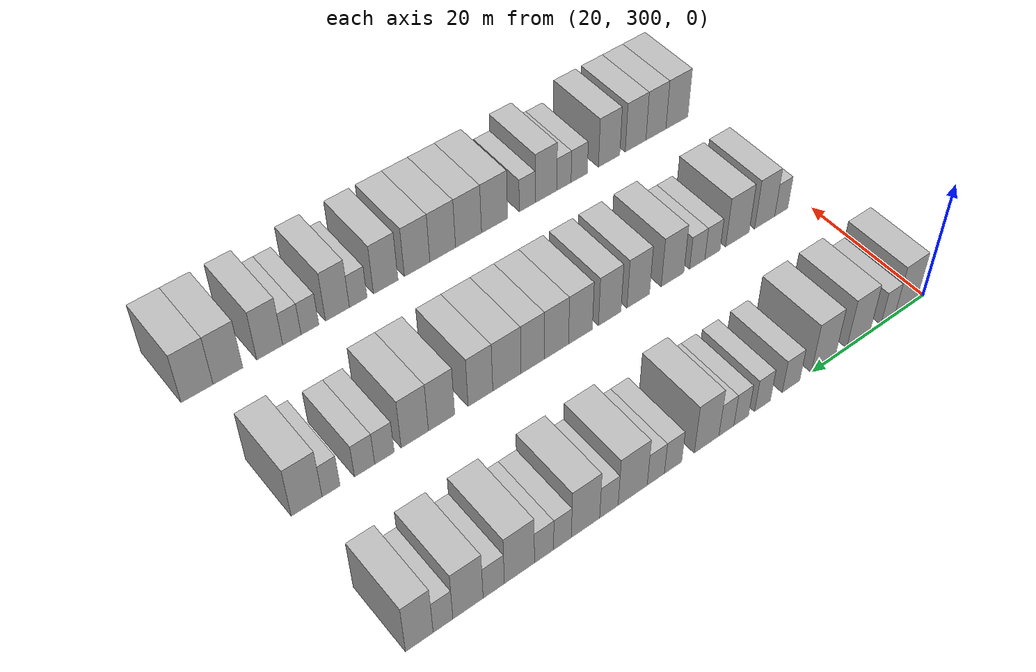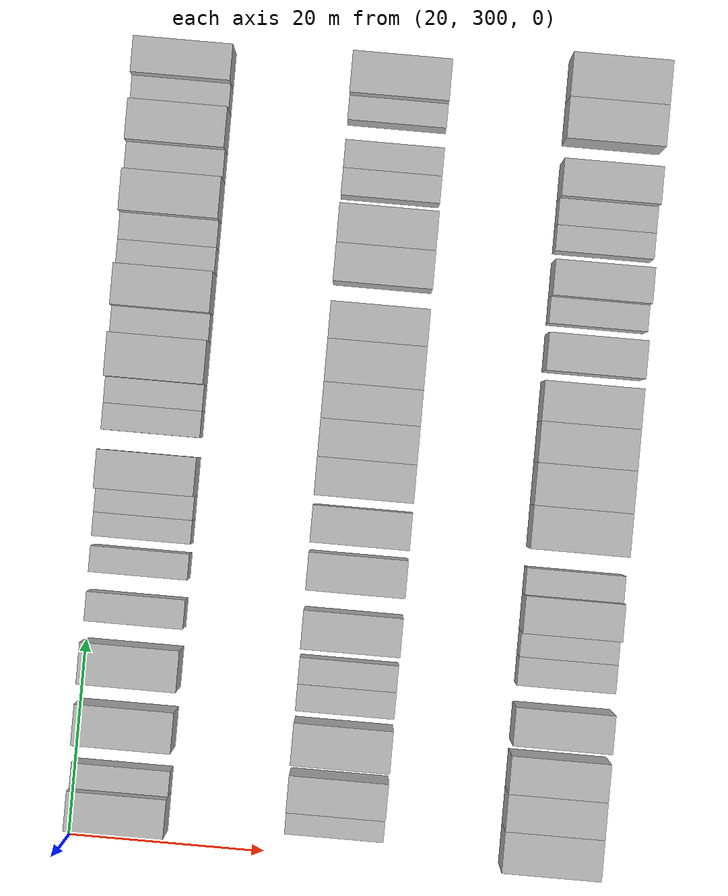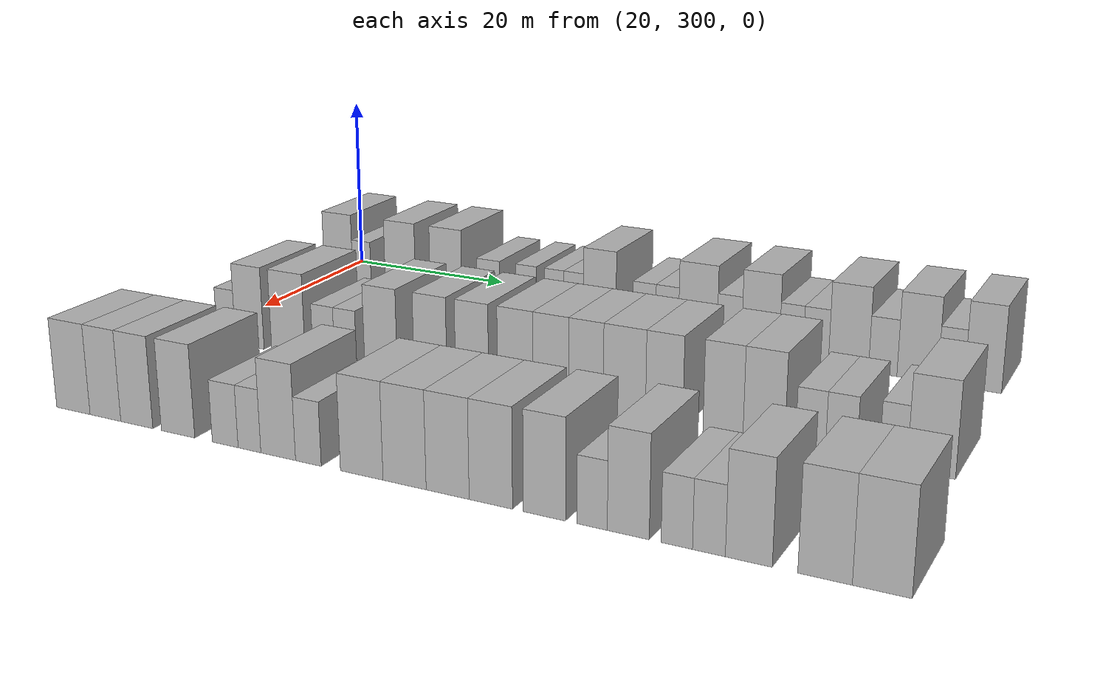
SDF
<sdf version="1.6">
 <world name="default">
  <model name="building_170">
   <static>1</static>
   <pose>25.0000 303.2661 0 0.000000 0.000000 0.000000</pose>
   <link name="link">
    <pose>0 0 4.50 0 0 0</pose>
    <collision name="collision"><geometry><box><size>10.0000 4.0403 9.0000</size></box></geometry></collision>
    <visual name="visual">
     <cast_shadows>0</cast_shadows>
     <geometry><box><size>10.0000 4.0403 9.0000</size></box></geometry>
     <material>
      <script>
       <uri>model://HANNAS_wall/materials/scripts</uri>
       <uri>model://HANNAS_wall/materials/textures</uri>
       <name>vrc/HANNAS_wall</name>
      </script>
     </material>
    </visual>
   </link>
  </model>
  <model name="building_171">
   <static>1</static>
   <pose>25.0000 306.5720 0 0.000000 0.000000 0.000000</pose>
   <link name="link">
    <pose>0 0 3.00 0 0 0</pose>
    <collision name="collision"><geometry><box><size>10.0000 2.5715 6.0000</size></box></geometry></collision>
    <visual name="visual">
     <cast_shadows>0</cast_shadows>
     <geometry><box><size>10.0000 2.5715 6.0000</size></box></geometry>
     <material>
      <script>
       <uri>model://HANNAS_wall/materials/scripts</uri>
       <uri>model://HANNAS_wall/materials/textures</uri>
       <name>vrc/HANNAS_wall</name>
      </script>
     </material>
    </visual>
   </link>
  </model>
  <model name="building_172">
   <static>1</static>
   <pose>25.0000 311.9329 0 0.000000 0.000000 0.000000</pose>
   <link name="link">
    <pose>0 0 4.50 0 0 0</pose>
    <collision name="collision"><geometry><box><size>10.0000 4.1502 9.0000</size></box></geometry></collision>
    <visual name="visual">
     <cast_shadows>0</cast_shadows>
     <geometry><box><size>10.0000 4.1502 9.0000</size></box></geometry>
     <material>
      <script>
       <uri>model://HANNAS_wall/materials/scripts</uri>
       <uri>model://HANNAS_wall/materials/textures</uri>
       <name>vrc/HANNAS_wall</name>
      </script>
     </material>
    </visual>
   </link>
  </model>
  <model name="building_173">
   <static>1</static>
   <pose>25.0000 318.1104 0 0.000000 0.000000 0.000000</pose>
   <link name="link">
    <pose>0 0 4.50 0 0 0</pose>
    <collision name="collision"><geometry><box><size>10.0000 4.2048 9.0000</size></box></geometry></collision>
    <visual name="visual">
     <cast_shadows>0</cast_shadows>
     <geometry><box><size>10.0000 4.2048 9.0000</size></box></geometry>
     <material>
      <script>
       <uri>model://HANNAS_wall/materials/scripts</uri>
       <uri>model://HANNAS_wall/materials/textures</uri>
       <name>vrc/HANNAS_wall</name>
      </script>
     </material>
    </visual>
   </link>
  </model>
  <model name="building_174">
   <static>1</static>
   <pose>25.0000 323.7026 0 0.000000 0.000000 0.000000</pose>
   <link name="link">
    <pose>0 0 3.00 0 0 0</pose>
    <collision name="collision"><geometry><box><size>10.0000 2.9797 6.0000</size></box></geometry></collision>
    <visual name="visual">
     <cast_shadows>0</cast_shadows>
     <geometry><box><size>10.0000 2.9797 6.0000</size></box></geometry>
     <material>
      <script>
       <uri>model://HANNAS_wall/materials/scripts</uri>
       <uri>model://HANNAS_wall/materials/textures</uri>
       <name>vrc/HANNAS_wall</name>
      </script>
     </material>
    </visual>
   </link>
  </model>
  <model name="building_175">
   <static>1</static>
   <pose>25.0000 328.5104 0 0.000000 0.000000 0.000000</pose>
   <link name="link">
    <pose>0 0 3.00 0 0 0</pose>
    <collision name="collision"><geometry><box><size>10.0000 2.6358 6.0000</size></box></geometry></collision>
    <visual name="visual">
     <cast_shadows>0</cast_shadows>
     <geometry><box><size>10.0000 2.6358 6.0000</size></box></geometry>
     <material>
      <script>
       <uri>model://HANNAS_wall/materials/scripts</uri>
       <uri>model://HANNAS_wall/materials/textures</uri>
       <name>vrc/HANNAS_wall</name>
      </script>
     </material>
    </visual>
   </link>
  </model>
  <model name="building_176">
   <static>1</static>
   <pose>25.0000 332.0305 0 0.000000 0.000000 0.000000</pose>
   <link name="link">
    <pose>0 0 3.00 0 0 0</pose>
    <collision name="collision"><geometry><box><size>10.0000 2.4046 6.0000</size></box></geometry></collision>
    <visual name="visual">
     <cast_shadows>0</cast_shadows>
     <geometry><box><size>10.0000 2.4046 6.0000</size></box></geometry>
     <material>
      <script>
       <uri>model://HANNAS_wall/materials/scripts</uri>
       <uri>model://HANNAS_wall/materials/textures</uri>
       <name>vrc/HANNAS_wall</name>
      </script>
     </material>
    </visual>
   </link>
  </model>
  <model name="building_177">
   <static>1</static>
   <pose>25.0000 334.4507 0 0.000000 0.000000 0.000000</pose>
   <link name="link">
    <pose>0 0 3.00 0 0 0</pose>
    <collision name="collision"><geometry><box><size>10.0000 2.4357 6.0000</size></box></geometry></collision>
    <visual name="visual">
     <cast_shadows>0</cast_shadows>
     <geometry><box><size>10.0000 2.4357 6.0000</size></box></geometry>
     <material>
      <script>
       <uri>model://HANNAS_wall/materials/scripts</uri>
       <uri>model://HANNAS_wall/materials/textures</uri>
       <name>vrc/HANNAS_wall</name>
      </script>
     </material>
    </visual>
   </link>
  </model>
  <model name="building_178">
   <static>1</static>
   <pose>25.0000 337.6294 0 0.000000 0.000000 0.000000</pose>
   <link name="link">
    <pose>0 0 4.50 0 0 0</pose>
    <collision name="collision"><geometry><box><size>10.0000 3.9219 9.0000</size></box></geometry></collision>
    <visual name="visual">
     <cast_shadows>0</cast_shadows>
     <geometry><box><size>10.0000 3.9219 9.0000</size></box></geometry>
     <material>
      <script>
       <uri>model://HANNAS_wall/materials/scripts</uri>
       <uri>model://HANNAS_wall/materials/textures</uri>
       <name>vrc/HANNAS_wall</name>
      </script>
     </material>
    </visual>
   </link>
  </model>
  <model name="building_179">
   <static>1</static>
   <pose>25.0000 342.9381 0 0.000000 0.000000 0.000000</pose>
   <link name="link">
    <pose>0 0 3.00 0 0 0</pose>
    <collision name="collision"><geometry><box><size>10.0000 2.6955 6.0000</size></box></geometry></collision>
    <visual name="visual">
     <cast_shadows>0</cast_shadows>
     <geometry><box><size>10.0000 2.6955 6.0000</size></box></geometry>
     <material>
      <script>
       <uri>model://HANNAS_wall/materials/scripts</uri>
       <uri>model://HANNAS_wall/materials/textures</uri>
       <name>vrc/HANNAS_wall</name>
      </script>
     </material>
    </visual>
   </link>
  </model>
  <model name="building_180">
   <static>1</static>
   <pose>25.0000 345.6119 0 0.000000 0.000000 0.000000</pose>
   <link name="link">
    <pose>0 0 3.00 0 0 0</pose>
    <collision name="collision"><geometry><box><size>10.0000 2.6520 6.0000</size></box></geometry></collision>
    <visual name="visual">
     <cast_shadows>0</cast_shadows>
     <geometry><box><size>10.0000 2.6520 6.0000</size></box></geometry>
     <material>
      <script>
       <uri>model://HANNAS_wall/materials/scripts</uri>
       <uri>model://HANNAS_wall/materials/textures</uri>
       <name>vrc/HANNAS_wall</name>
      </script>
     </material>
    </visual>
   </link>
  </model>
  <model name="building_181">
   <static>1</static>
   <pose>25.0000 349.1425 0 0.000000 0.000000 0.000000</pose>
   <link name="link">
    <pose>0 0 4.50 0 0 0</pose>
    <collision name="collision"><geometry><box><size>10.0000 4.4092 9.0000</size></box></geometry></collision>
    <visual name="visual">
     <cast_shadows>0</cast_shadows>
     <geometry><box><size>10.0000 4.4092 9.0000</size></box></geometry>
     <material>
      <script>
       <uri>model://HANNAS_wall/materials/scripts</uri>
       <uri>model://HANNAS_wall/materials/textures</uri>
       <name>vrc/HANNAS_wall</name>
      </script>
     </material>
    </visual>
   </link>
  </model>
  <model name="building_182">
   <static>1</static>
   <pose>25.0000 352.7221 0 0.000000 0.000000 0.000000</pose>
   <link name="link">
    <pose>0 0 3.00 0 0 0</pose>
    <collision name="collision"><geometry><box><size>10.0000 2.7500 6.0000</size></box></geometry></collision>
    <visual name="visual">
     <cast_shadows>0</cast_shadows>
     <geometry><box><size>10.0000 2.7500 6.0000</size></box></geometry>
     <material>
      <script>
       <uri>model://HANNAS_wall/materials/scripts</uri>
       <uri>model://HANNAS_wall/materials/textures</uri>
       <name>vrc/HANNAS_wall</name>
      </script>
     </material>
    </visual>
   </link>
  </model>
  <model name="building_183">
   <static>1</static>
   <pose>25.0000 356.1804 0 0.000000 0.000000 0.000000</pose>
   <link name="link">
    <pose>0 0 4.50 0 0 0</pose>
    <collision name="collision"><geometry><box><size>10.0000 4.1666 9.0000</size></box></geometry></collision>
    <visual name="visual">
     <cast_shadows>0</cast_shadows>
     <geometry><box><size>10.0000 4.1666 9.0000</size></box></geometry>
     <material>
      <script>
       <uri>model://HANNAS_wall/materials/scripts</uri>
       <uri>model://HANNAS_wall/materials/textures</uri>
       <name>vrc/HANNAS_wall</name>
      </script>
     </material>
    </visual>
   </link>
  </model>
  <model name="building_184">
   <static>1</static>
   <pose>25.0000 359.5415 0 0.000000 0.000000 0.000000</pose>
   <link name="link">
    <pose>0 0 3.00 0 0 0</pose>
    <collision name="collision"><geometry><box><size>10.0000 2.5557 6.0000</size></box></geometry></collision>
    <visual name="visual">
     <cast_shadows>0</cast_shadows>
     <geometry><box><size>10.0000 2.5557 6.0000</size></box></geometry>
     <material>
      <script>
       <uri>model://HANNAS_wall/materials/scripts</uri>
       <uri>model://HANNAS_wall/materials/textures</uri>
       <name>vrc/HANNAS_wall</name>
      </script>
     </material>
    </visual>
   </link>
  </model>
  <model name="building_185">
   <static>1</static>
   <pose>25.0000 362.1858 0 0.000000 0.000000 0.000000</pose>
   <link name="link">
    <pose>0 0 3.00 0 0 0</pose>
    <collision name="collision"><geometry><box><size>10.0000 2.7330 6.0000</size></box></geometry></collision>
    <visual name="visual">
     <cast_shadows>0</cast_shadows>
     <geometry><box><size>10.0000 2.7330 6.0000</size></box></geometry>
     <material>
      <script>
       <uri>model://HANNAS_wall/materials/scripts</uri>
       <uri>model://HANNAS_wall/materials/textures</uri>
       <name>vrc/HANNAS_wall</name>
      </script>
     </material>
    </visual>
   </link>
  </model>
  <model name="building_186">
   <static>1</static>
   <pose>25.0000 365.6537 0 0.000000 0.000000 0.000000</pose>
   <link name="link">
    <pose>0 0 4.50 0 0 0</pose>
    <collision name="collision"><geometry><box><size>10.0000 4.2027 9.0000</size></box></geometry></collision>
    <visual name="visual">
     <cast_shadows>0</cast_shadows>
     <geometry><box><size>10.0000 4.2027 9.0000</size></box></geometry>
     <material>
      <script>
       <uri>model://HANNAS_wall/materials/scripts</uri>
       <uri>model://HANNAS_wall/materials/textures</uri>
       <name>vrc/HANNAS_wall</name>
      </script>
     </material>
    </visual>
   </link>
  </model>
  <model name="building_187">
   <static>1</static>
   <pose>25.0000 369.2146 0 0.000000 0.000000 0.000000</pose>
   <link name="link">
    <pose>0 0 3.00 0 0 0</pose>
    <collision name="collision"><geometry><box><size>10.0000 2.9190 6.0000</size></box></geometry></collision>
    <visual name="visual">
     <cast_shadows>0</cast_shadows>
     <geometry><box><size>10.0000 2.9190 6.0000</size></box></geometry>
     <material>
      <script>
       <uri>model://HANNAS_wall/materials/scripts</uri>
       <uri>model://HANNAS_wall/materials/textures</uri>
       <name>vrc/HANNAS_wall</name>
      </script>
     </material>
    </visual>
   </link>
  </model>
  <model name="building_188">
   <static>1</static>
   <pose>25.0000 372.7223 0 0.000000 0.000000 0.000000</pose>
   <link name="link">
    <pose>0 0 4.50 0 0 0</pose>
    <collision name="collision"><geometry><box><size>10.0000 4.0964 9.0000</size></box></geometry></collision>
    <visual name="visual">
     <cast_shadows>0</cast_shadows>
     <geometry><box><size>10.0000 4.0964 9.0000</size></box></geometry>
     <material>
      <script>
       <uri>model://HANNAS_wall/materials/scripts</uri>
       <uri>model://HANNAS_wall/materials/textures</uri>
       <name>vrc/HANNAS_wall</name>
      </script>
     </material>
    </visual>
   </link>
  </model>
  <model name="building_189">
   <static>1</static>
   <pose>25.0000 376.0805 0 0.000000 0.000000 0.000000</pose>
   <link name="link">
    <pose>0 0 3.00 0 0 0</pose>
    <collision name="collision"><geometry><box><size>10.0000 2.6201 6.0000</size></box></geometry></collision>
    <visual name="visual">
     <cast_shadows>0</cast_shadows>
     <geometry><box><size>10.0000 2.6201 6.0000</size></box></geometry>
     <material>
      <script>
       <uri>model://HANNAS_wall/materials/scripts</uri>
       <uri>model://HANNAS_wall/materials/textures</uri>
       <name>vrc/HANNAS_wall</name>
      </script>
     </material>
    </visual>
   </link>
  </model>
  <model name="building_190">
   <static>1</static>
   <pose>25.0000 379.2109 0 0.000000 0.000000 0.000000</pose>
   <link name="link">
    <pose>0 0 4.50 0 0 0</pose>
    <collision name="collision"><geometry><box><size>10.0000 3.6407 9.0000</size></box></geometry></collision>
    <visual name="visual">
     <cast_shadows>0</cast_shadows>
     <geometry><box><size>10.0000 3.6407 9.0000</size></box></geometry>
     <material>
      <script>
       <uri>model://HANNAS_wall/materials/scripts</uri>
       <uri>model://HANNAS_wall/materials/textures</uri>
       <name>vrc/HANNAS_wall</name>
      </script>
     </material>
    </visual>
   </link>
  </model>
  <model name="building_357">
   <static>1</static>
   <pose>47.0000 303.8400 0 0.000000 0.000000 0.000000</pose>
   <link name="link">
    <pose>0 0 3.00 0 0 0</pose>
    <collision name="collision"><geometry><box><size>10.0000 2.4468 6.0000</size></box></geometry></collision>
    <visual name="visual">
     <cast_shadows>0</cast_shadows>
     <geometry><box><size>10.0000 2.4468 6.0000</size></box></geometry>
     <material>
      <script>
       <uri>model://HANNAS_wall/materials/scripts</uri>
       <uri>model://HANNAS_wall/materials/textures</uri>
       <name>vrc/HANNAS_wall</name>
      </script>
     </material>
    </visual>
   </link>
  </model>
  <model name="building_358">
   <static>1</static>
   <pose>47.0000 306.9275 0 0.000000 0.000000 0.000000</pose>
   <link name="link">
    <pose>0 0 4.50 0 0 0</pose>
    <collision name="collision"><geometry><box><size>10.0000 3.7282 9.0000</size></box></geometry></collision>
    <visual name="visual">
     <cast_shadows>0</cast_shadows>
     <geometry><box><size>10.0000 3.7282 9.0000</size></box></geometry>
     <material>
      <script>
       <uri>model://HANNAS_wall/materials/scripts</uri>
       <uri>model://HANNAS_wall/materials/textures</uri>
       <name>vrc/HANNAS_wall</name>
      </script>
     </material>
    </visual>
   </link>
  </model>
  <model name="building_359">
   <static>1</static>
   <pose>47.0000 311.9309 0 0.000000 0.000000 0.000000</pose>
   <link name="link">
    <pose>0 0 4.50 0 0 0</pose>
    <collision name="collision"><geometry><box><size>10.0000 4.2785 9.0000</size></box></geometry></collision>
    <visual name="visual">
     <cast_shadows>0</cast_shadows>
     <geometry><box><size>10.0000 4.2785 9.0000</size></box></geometry>
     <material>
      <script>
       <uri>model://HANNAS_wall/materials/scripts</uri>
       <uri>model://HANNAS_wall/materials/textures</uri>
       <name>vrc/HANNAS_wall</name>
      </script>
     </material>
    </visual>
   </link>
  </model>
  <model name="building_360">
   <static>1</static>
   <pose>47.0000 316.4208 0 0.000000 0.000000 0.000000</pose>
   <link name="link">
    <pose>0 0 3.00 0 0 0</pose>
    <collision name="collision"><geometry><box><size>10.0000 2.7013 6.0000</size></box></geometry></collision>
    <visual name="visual">
     <cast_shadows>0</cast_shadows>
     <geometry><box><size>10.0000 2.7013 6.0000</size></box></geometry>
     <material>
      <script>
       <uri>model://HANNAS_wall/materials/scripts</uri>
       <uri>model://HANNAS_wall/materials/textures</uri>
       <name>vrc/HANNAS_wall</name>
      </script>
     </material>
    </visual>
   </link>
  </model>
  <model name="building_361">
   <static>1</static>
   <pose>47.0000 319.1200 0 0.000000 0.000000 0.000000</pose>
   <link name="link">
    <pose>0 0 3.00 0 0 0</pose>
    <collision name="collision"><geometry><box><size>10.0000 2.6970 6.0000</size></box></geometry></collision>
    <visual name="visual">
     <cast_shadows>0</cast_shadows>
     <geometry><box><size>10.0000 2.6970 6.0000</size></box></geometry>
     <material>
      <script>
       <uri>model://HANNAS_wall/materials/scripts</uri>
       <uri>model://HANNAS_wall/materials/textures</uri>
       <name>vrc/HANNAS_wall</name>
      </script>
     </material>
    </visual>
   </link>
  </model>
  <model name="building_362">
   <static>1</static>
   <pose>47.0000 323.4276 0 0.000000 0.000000 0.000000</pose>
   <link name="link">
    <pose>0 0 4.50 0 0 0</pose>
    <collision name="collision"><geometry><box><size>10.0000 3.9183 9.0000</size></box></geometry></collision>
    <visual name="visual">
     <cast_shadows>0</cast_shadows>
     <geometry><box><size>10.0000 3.9183 9.0000</size></box></geometry>
     <material>
      <script>
       <uri>model://HANNAS_wall/materials/scripts</uri>
       <uri>model://HANNAS_wall/materials/textures</uri>
       <name>vrc/HANNAS_wall</name>
      </script>
     </material>
    </visual>
   </link>
  </model>
  <model name="building_363">
   <static>1</static>
   <pose>47.0000 329.2932 0 0.000000 0.000000 0.000000</pose>
   <link name="link">
    <pose>0 0 4.50 0 0 0</pose>
    <collision name="collision"><geometry><box><size>10.0000 3.8129 9.0000</size></box></geometry></collision>
    <visual name="visual">
     <cast_shadows>0</cast_shadows>
     <geometry><box><size>10.0000 3.8129 9.0000</size></box></geometry>
     <material>
      <script>
       <uri>model://HANNAS_wall/materials/scripts</uri>
       <uri>model://HANNAS_wall/materials/textures</uri>
       <name>vrc/HANNAS_wall</name>
      </script>
     </material>
    </visual>
   </link>
  </model>
  <model name="building_364">
   <static>1</static>
   <pose>47.0000 334.0664 0 0.000000 0.000000 0.000000</pose>
   <link name="link">
    <pose>0 0 4.50 0 0 0</pose>
    <collision name="collision"><geometry><box><size>10.0000 3.7336 9.0000</size></box></geometry></collision>
    <visual name="visual">
     <cast_shadows>0</cast_shadows>
     <geometry><box><size>10.0000 3.7336 9.0000</size></box></geometry>
     <material>
      <script>
       <uri>model://HANNAS_wall/materials/scripts</uri>
       <uri>model://HANNAS_wall/materials/textures</uri>
       <name>vrc/HANNAS_wall</name>
      </script>
     </material>
    </visual>
   </link>
  </model>
  <model name="building_365">
   <static>1</static>
   <pose>47.0000 338.8648 0 0.000000 0.000000 0.000000</pose>
   <link name="link">
    <pose>0 0 4.50 0 0 0</pose>
    <collision name="collision"><geometry><box><size>10.0000 3.8631 9.0000</size></box></geometry></collision>
    <visual name="visual">
     <cast_shadows>0</cast_shadows>
     <geometry><box><size>10.0000 3.8631 9.0000</size></box></geometry>
     <material>
      <script>
       <uri>model://HANNAS_wall/materials/scripts</uri>
       <uri>model://HANNAS_wall/materials/textures</uri>
       <name>vrc/HANNAS_wall</name>
      </script>
     </material>
    </visual>
   </link>
  </model>
  <model name="building_366">
   <static>1</static>
   <pose>47.0000 342.7259 0 0.000000 0.000000 0.000000</pose>
   <link name="link">
    <pose>0 0 4.50 0 0 0</pose>
    <collision name="collision"><geometry><box><size>10.0000 3.8591 9.0000</size></box></geometry></collision>
    <visual name="visual">
     <cast_shadows>0</cast_shadows>
     <geometry><box><size>10.0000 3.8591 9.0000</size></box></geometry>
     <material>
      <script>
       <uri>model://HANNAS_wall/materials/scripts</uri>
       <uri>model://HANNAS_wall/materials/textures</uri>
       <name>vrc/HANNAS_wall</name>
      </script>
     </material>
    </visual>
   </link>
  </model>
  <model name="building_367">
   <static>1</static>
   <pose>47.0000 346.4784 0 0.000000 0.000000 0.000000</pose>
   <link name="link">
    <pose>0 0 4.50 0 0 0</pose>
    <collision name="collision"><geometry><box><size>10.0000 3.6457 9.0000</size></box></geometry></collision>
    <visual name="visual">
     <cast_shadows>0</cast_shadows>
     <geometry><box><size>10.0000 3.6457 9.0000</size></box></geometry>
     <material>
      <script>
       <uri>model://HANNAS_wall/materials/scripts</uri>
       <uri>model://HANNAS_wall/materials/textures</uri>
       <name>vrc/HANNAS_wall</name>
      </script>
     </material>
    </visual>
   </link>
  </model>
  <model name="building_368">
   <static>1</static>
   <pose>47.0000 350.4759 0 0.000000 0.000000 0.000000</pose>
   <link name="link">
    <pose>0 0 4.50 0 0 0</pose>
    <collision name="collision"><geometry><box><size>10.0000 4.3493 9.0000</size></box></geometry></collision>
    <visual name="visual">
     <cast_shadows>0</cast_shadows>
     <geometry><box><size>10.0000 4.3493 9.0000</size></box></geometry>
     <material>
      <script>
       <uri>model://HANNAS_wall/materials/scripts</uri>
       <uri>model://HANNAS_wall/materials/textures</uri>
       <name>vrc/HANNAS_wall</name>
      </script>
     </material>
    </visual>
   </link>
  </model>
  <model name="building_369">
   <static>1</static>
   <pose>47.0000 354.5251 0 0.000000 0.000000 0.000000</pose>
   <link name="link">
    <pose>0 0 4.50 0 0 0</pose>
    <collision name="collision"><geometry><box><size>10.0000 3.7490 9.0000</size></box></geometry></collision>
    <visual name="visual">
     <cast_shadows>0</cast_shadows>
     <geometry><box><size>10.0000 3.7490 9.0000</size></box></geometry>
     <material>
      <script>
       <uri>model://HANNAS_wall/materials/scripts</uri>
       <uri>model://HANNAS_wall/materials/textures</uri>
       <name>vrc/HANNAS_wall</name>
      </script>
     </material>
    </visual>
   </link>
  </model>
  <model name="building_370">
   <static>1</static>
   <pose>47.0000 360.3385 0 0.000000 0.000000 0.000000</pose>
   <link name="link">
    <pose>0 0 4.50 0 0 0</pose>
    <collision name="collision"><geometry><box><size>10.0000 3.8778 9.0000</size></box></geometry></collision>
    <visual name="visual">
     <cast_shadows>0</cast_shadows>
     <geometry><box><size>10.0000 3.8778 9.0000</size></box></geometry>
     <material>
      <script>
       <uri>model://HANNAS_wall/materials/scripts</uri>
       <uri>model://HANNAS_wall/materials/textures</uri>
       <name>vrc/HANNAS_wall</name>
      </script>
     </material>
    </visual>
   </link>
  </model>
  <model name="building_371">
   <static>1</static>
   <pose>47.0000 364.2508 0 0.000000 0.000000 0.000000</pose>
   <link name="link">
    <pose>0 0 4.50 0 0 0</pose>
    <collision name="collision"><geometry><box><size>10.0000 3.9470 9.0000</size></box></geometry></collision>
    <visual name="visual">
     <cast_shadows>0</cast_shadows>
     <geometry><box><size>10.0000 3.9470 9.0000</size></box></geometry>
     <material>
      <script>
       <uri>model://HANNAS_wall/materials/scripts</uri>
       <uri>model://HANNAS_wall/materials/textures</uri>
       <name>vrc/HANNAS_wall</name>
      </script>
     </material>
    </visual>
   </link>
  </model>
  <model name="building_372">
   <static>1</static>
   <pose>47.0000 368.6097 0 0.000000 0.000000 0.000000</pose>
   <link name="link">
    <pose>0 0 3.00 0 0 0</pose>
    <collision name="collision"><geometry><box><size>10.0000 2.7708 6.0000</size></box></geometry></collision>
    <visual name="visual">
     <cast_shadows>0</cast_shadows>
     <geometry><box><size>10.0000 2.7708 6.0000</size></box></geometry>
     <material>
      <script>
       <uri>model://HANNAS_wall/materials/scripts</uri>
       <uri>model://HANNAS_wall/materials/textures</uri>
       <name>vrc/HANNAS_wall</name>
      </script>
     </material>
    </visual>
   </link>
  </model>
  <model name="building_373">
   <static>1</static>
   <pose>47.0000 371.4175 0 0.000000 0.000000 0.000000</pose>
   <link name="link">
    <pose>0 0 3.00 0 0 0</pose>
    <collision name="collision"><geometry><box><size>10.0000 2.8448 6.0000</size></box></geometry></collision>
    <visual name="visual">
     <cast_shadows>0</cast_shadows>
     <geometry><box><size>10.0000 2.8448 6.0000</size></box></geometry>
     <material>
      <script>
       <uri>model://HANNAS_wall/materials/scripts</uri>
       <uri>model://HANNAS_wall/materials/textures</uri>
       <name>vrc/HANNAS_wall</name>
      </script>
     </material>
    </visual>
   </link>
  </model>
  <model name="building_374">
   <static>1</static>
   <pose>47.0000 376.0656 0 0.000000 0.000000 0.000000</pose>
   <link name="link">
    <pose>0 0 3.00 0 0 0</pose>
    <collision name="collision"><geometry><box><size>10.0000 2.4515 6.0000</size></box></geometry></collision>
    <visual name="visual">
     <cast_shadows>0</cast_shadows>
     <geometry><box><size>10.0000 2.4515 6.0000</size></box></geometry>
     <material>
      <script>
       <uri>model://HANNAS_wall/materials/scripts</uri>
       <uri>model://HANNAS_wall/materials/textures</uri>
       <name>vrc/HANNAS_wall</name>
      </script>
     </material>
    </visual>
   </link>
  </model>
  <model name="building_375">
   <static>1</static>
   <pose>47.0000 379.3879 0 0.000000 0.000000 0.000000</pose>
   <link name="link">
    <pose>0 0 4.50 0 0 0</pose>
    <collision name="collision"><geometry><box><size>10.0000 4.1931 9.0000</size></box></geometry></collision>
    <visual name="visual">
     <cast_shadows>0</cast_shadows>
     <geometry><box><size>10.0000 4.1931 9.0000</size></box></geometry>
     <material>
      <script>
       <uri>model://HANNAS_wall/materials/scripts</uri>
       <uri>model://HANNAS_wall/materials/textures</uri>
       <name>vrc/HANNAS_wall</name>
      </script>
     </material>
    </visual>
   </link>
  </model>
  <model name="building_548">
   <static>1</static>
   <pose>69.0000 303.0256 0 0.000000 0.000000 0.000000</pose>
   <link name="link">
    <pose>0 0 4.50 0 0 0</pose>
    <collision name="collision"><geometry><box><size>10.0000 4.1642 9.0000</size></box></geometry></collision>
    <visual name="visual">
     <cast_shadows>0</cast_shadows>
     <geometry><box><size>10.0000 4.1642 9.0000</size></box></geometry>
     <material>
      <script>
       <uri>model://HANNAS_wall/materials/scripts</uri>
       <uri>model://HANNAS_wall/materials/textures</uri>
       <name>vrc/HANNAS_wall</name>
      </script>
     </material>
    </visual>
   </link>
  </model>
  <model name="building_549">
   <static>1</static>
   <pose>69.0000 306.9866 0 0.000000 0.000000 0.000000</pose>
   <link name="link">
    <pose>0 0 4.50 0 0 0</pose>
    <collision name="collision"><geometry><box><size>10.0000 3.7577 9.0000</size></box></geometry></collision>
    <visual name="visual">
     <cast_shadows>0</cast_shadows>
     <geometry><box><size>10.0000 3.7577 9.0000</size></box></geometry>
     <material>
      <script>
       <uri>model://HANNAS_wall/materials/scripts</uri>
       <uri>model://HANNAS_wall/materials/textures</uri>
       <name>vrc/HANNAS_wall</name>
      </script>
     </material>
    </visual>
   </link>
  </model>
  <model name="building_550">
   <static>1</static>
   <pose>69.0000 310.7841 0 0.000000 0.000000 0.000000</pose>
   <link name="link">
    <pose>0 0 4.50 0 0 0</pose>
    <collision name="collision"><geometry><box><size>10.0000 3.8373 9.0000</size></box></geometry></collision>
    <visual name="visual">
     <cast_shadows>0</cast_shadows>
     <geometry><box><size>10.0000 3.8373 9.0000</size></box></geometry>
     <material>
      <script>
       <uri>model://HANNAS_wall/materials/scripts</uri>
       <uri>model://HANNAS_wall/materials/textures</uri>
       <name>vrc/HANNAS_wall</name>
      </script>
     </material>
    </visual>
   </link>
  </model>
  <model name="building_551">
   <static>1</static>
   <pose>69.0000 315.6452 0 0.000000 0.000000 0.000000</pose>
   <link name="link">
    <pose>0 0 4.50 0 0 0</pose>
    <collision name="collision"><geometry><box><size>10.0000 3.8849 9.0000</size></box></geometry></collision>
    <visual name="visual">
     <cast_shadows>0</cast_shadows>
     <geometry><box><size>10.0000 3.8849 9.0000</size></box></geometry>
     <material>
      <script>
       <uri>model://HANNAS_wall/materials/scripts</uri>
       <uri>model://HANNAS_wall/materials/textures</uri>
       <name>vrc/HANNAS_wall</name>
      </script>
     </material>
    </visual>
   </link>
  </model>
  <model name="building_552">
   <static>1</static>
   <pose>69.0000 321.0352 0 0.000000 0.000000 0.000000</pose>
   <link name="link">
    <pose>0 0 3.00 0 0 0</pose>
    <collision name="collision"><geometry><box><size>10.0000 2.8951 6.0000</size></box></geometry></collision>
    <visual name="visual">
     <cast_shadows>0</cast_shadows>
     <geometry><box><size>10.0000 2.8951 6.0000</size></box></geometry>
     <material>
      <script>
       <uri>model://HANNAS_wall/materials/scripts</uri>
       <uri>model://HANNAS_wall/materials/textures</uri>
       <name>vrc/HANNAS_wall</name>
      </script>
     </material>
    </visual>
   </link>
  </model>
  <model name="building_553">
   <static>1</static>
   <pose>69.0000 323.7376 0 0.000000 0.000000 0.000000</pose>
   <link name="link">
    <pose>0 0 3.00 0 0 0</pose>
    <collision name="collision"><geometry><box><size>10.0000 2.5096 6.0000</size></box></geometry></collision>
    <visual name="visual">
     <cast_shadows>0</cast_shadows>
     <geometry><box><size>10.0000 2.5096 6.0000</size></box></geometry>
     <material>
      <script>
       <uri>model://HANNAS_wall/materials/scripts</uri>
       <uri>model://HANNAS_wall/materials/textures</uri>
       <name>vrc/HANNAS_wall</name>
      </script>
     </material>
    </visual>
   </link>
  </model>
  <model name="building_554">
   <static>1</static>
   <pose>69.0000 326.8694 0 0.000000 0.000000 0.000000</pose>
   <link name="link">
    <pose>0 0 4.50 0 0 0</pose>
    <collision name="collision"><geometry><box><size>10.0000 3.7540 9.0000</size></box></geometry></collision>
    <visual name="visual">
     <cast_shadows>0</cast_shadows>
     <geometry><box><size>10.0000 3.7540 9.0000</size></box></geometry>
     <material>
      <script>
       <uri>model://HANNAS_wall/materials/scripts</uri>
       <uri>model://HANNAS_wall/materials/textures</uri>
       <name>vrc/HANNAS_wall</name>
      </script>
     </material>
    </visual>
   </link>
  </model>
  <model name="building_555">
   <static>1</static>
   <pose>69.0000 330.1113 0 0.000000 0.000000 0.000000</pose>
   <link name="link">
    <pose>0 0 3.00 0 0 0</pose>
    <collision name="collision"><geometry><box><size>10.0000 2.7298 6.0000</size></box></geometry></collision>
    <visual name="visual">
     <cast_shadows>0</cast_shadows>
     <geometry><box><size>10.0000 2.7298 6.0000</size></box></geometry>
     <material>
      <script>
       <uri>model://HANNAS_wall/materials/scripts</uri>
       <uri>model://HANNAS_wall/materials/textures</uri>
       <name>vrc/HANNAS_wall</name>
      </script>
     </material>
    </visual>
   </link>
  </model>
  <model name="building_556">
   <static>1</static>
   <pose>69.0000 335.6575 0 0.000000 0.000000 0.000000</pose>
   <link name="link">
    <pose>0 0 4.50 0 0 0</pose>
    <collision name="collision"><geometry><box><size>10.0000 4.3626 9.0000</size></box></geometry></collision>
    <visual name="visual">
     <cast_shadows>0</cast_shadows>
     <geometry><box><size>10.0000 4.3626 9.0000</size></box></geometry>
     <material>
      <script>
       <uri>model://HANNAS_wall/materials/scripts</uri>
       <uri>model://HANNAS_wall/materials/textures</uri>
       <name>vrc/HANNAS_wall</name>
      </script>
     </material>
    </visual>
   </link>
  </model>
  <model name="building_557">
   <static>1</static>
   <pose>69.0000 339.9836 0 0.000000 0.000000 0.000000</pose>
   <link name="link">
    <pose>0 0 4.50 0 0 0</pose>
    <collision name="collision"><geometry><box><size>10.0000 4.2897 9.0000</size></box></geometry></collision>
    <visual name="visual">
     <cast_shadows>0</cast_shadows>
     <geometry><box><size>10.0000 4.2897 9.0000</size></box></geometry>
     <material>
      <script>
       <uri>model://HANNAS_wall/materials/scripts</uri>
       <uri>model://HANNAS_wall/materials/textures</uri>
       <name>vrc/HANNAS_wall</name>
      </script>
     </material>
    </visual>
   </link>
  </model>
  <model name="building_558">
   <static>1</static>
   <pose>69.0000 344.2087 0 0.000000 0.000000 0.000000</pose>
   <link name="link">
    <pose>0 0 4.50 0 0 0</pose>
    <collision name="collision"><geometry><box><size>10.0000 4.1606 9.0000</size></box></geometry></collision>
    <visual name="visual">
     <cast_shadows>0</cast_shadows>
     <geometry><box><size>10.0000 4.1606 9.0000</size></box></geometry>
     <material>
      <script>
       <uri>model://HANNAS_wall/materials/scripts</uri>
       <uri>model://HANNAS_wall/materials/textures</uri>
       <name>vrc/HANNAS_wall</name>
      </script>
     </material>
    </visual>
   </link>
  </model>
  <model name="building_559">
   <static>1</static>
   <pose>69.0000 348.3294 0 0.000000 0.000000 0.000000</pose>
   <link name="link">
    <pose>0 0 4.50 0 0 0</pose>
    <collision name="collision"><geometry><box><size>10.0000 4.0808 9.0000</size></box></geometry></collision>
    <visual name="visual">
     <cast_shadows>0</cast_shadows>
     <geometry><box><size>10.0000 4.0808 9.0000</size></box></geometry>
     <material>
      <script>
       <uri>model://HANNAS_wall/materials/scripts</uri>
       <uri>model://HANNAS_wall/materials/textures</uri>
       <name>vrc/HANNAS_wall</name>
      </script>
     </material>
    </visual>
   </link>
  </model>
  <model name="building_560">
   <static>1</static>
   <pose>69.0000 353.2863 0 0.000000 0.000000 0.000000</pose>
   <link name="link">
    <pose>0 0 4.50 0 0 0</pose>
    <collision name="collision"><geometry><box><size>10.0000 3.8331 9.0000</size></box></geometry></collision>
    <visual name="visual">
     <cast_shadows>0</cast_shadows>
     <geometry><box><size>10.0000 3.8331 9.0000</size></box></geometry>
     <material>
      <script>
       <uri>model://HANNAS_wall/materials/scripts</uri>
       <uri>model://HANNAS_wall/materials/textures</uri>
       <name>vrc/HANNAS_wall</name>
      </script>
     </material>
    </visual>
   </link>
  </model>
  <model name="building_561">
   <static>1</static>
   <pose>69.0000 357.5532 0 0.000000 0.000000 0.000000</pose>
   <link name="link">
    <pose>0 0 3.00 0 0 0</pose>
    <collision name="collision"><geometry><box><size>10.0000 2.7007 6.0000</size></box></geometry></collision>
    <visual name="visual">
     <cast_shadows>0</cast_shadows>
     <geometry><box><size>10.0000 2.7007 6.0000</size></box></geometry>
     <material>
      <script>
       <uri>model://HANNAS_wall/materials/scripts</uri>
       <uri>model://HANNAS_wall/materials/textures</uri>
       <name>vrc/HANNAS_wall</name>
      </script>
     </material>
    </visual>
   </link>
  </model>
  <model name="building_562">
   <static>1</static>
   <pose>69.0000 360.7161 0 0.000000 0.000000 0.000000</pose>
   <link name="link">
    <pose>0 0 4.50 0 0 0</pose>
    <collision name="collision"><geometry><box><size>10.0000 3.6252 9.0000</size></box></geometry></collision>
    <visual name="visual">
     <cast_shadows>0</cast_shadows>
     <geometry><box><size>10.0000 3.6252 9.0000</size></box></geometry>
     <material>
      <script>
       <uri>model://HANNAS_wall/materials/scripts</uri>
       <uri>model://HANNAS_wall/materials/textures</uri>
       <name>vrc/HANNAS_wall</name>
      </script>
     </material>
    </visual>
   </link>
  </model>
  <model name="building_563">
   <static>1</static>
   <pose>69.0000 364.8457 0 0.000000 0.000000 0.000000</pose>
   <link name="link">
    <pose>0 0 3.00 0 0 0</pose>
    <collision name="collision"><geometry><box><size>10.0000 2.6340 6.0000</size></box></geometry></collision>
    <visual name="visual">
     <cast_shadows>0</cast_shadows>
     <geometry><box><size>10.0000 2.6340 6.0000</size></box></geometry>
     <material>
      <script>
       <uri>model://HANNAS_wall/materials/scripts</uri>
       <uri>model://HANNAS_wall/materials/textures</uri>
       <name>vrc/HANNAS_wall</name>
      </script>
     </material>
    </visual>
   </link>
  </model>
  <model name="building_564">
   <static>1</static>
   <pose>69.0000 367.5138 0 0.000000 0.000000 0.000000</pose>
   <link name="link">
    <pose>0 0 3.00 0 0 0</pose>
    <collision name="collision"><geometry><box><size>10.0000 2.7022 6.0000</size></box></geometry></collision>
    <visual name="visual">
     <cast_shadows>0</cast_shadows>
     <geometry><box><size>10.0000 2.7022 6.0000</size></box></geometry>
     <material>
      <script>
       <uri>model://HANNAS_wall/materials/scripts</uri>
       <uri>model://HANNAS_wall/materials/textures</uri>
       <name>vrc/HANNAS_wall</name>
      </script>
     </material>
    </visual>
   </link>
  </model>
  <model name="building_565">
   <static>1</static>
   <pose>69.0000 370.7519 0 0.000000 0.000000 0.000000</pose>
   <link name="link">
    <pose>0 0 4.50 0 0 0</pose>
    <collision name="collision"><geometry><box><size>10.0000 3.7740 9.0000</size></box></geometry></collision>
    <visual name="visual">
     <cast_shadows>0</cast_shadows>
     <geometry><box><size>10.0000 3.7740 9.0000</size></box></geometry>
     <material>
      <script>
       <uri>model://HANNAS_wall/materials/scripts</uri>
       <uri>model://HANNAS_wall/materials/textures</uri>
       <name>vrc/HANNAS_wall</name>
      </script>
     </material>
    </visual>
   </link>
  </model>
  <model name="building_566">
   <static>1</static>
   <pose>69.0000 376.7342 0 0.000000 0.000000 0.000000</pose>
   <link name="link">
    <pose>0 0 4.50 0 0 0</pose>
    <collision name="collision"><geometry><box><size>10.0000 4.1905 9.0000</size></box></geometry></collision>
    <visual name="visual">
     <cast_shadows>0</cast_shadows>
     <geometry><box><size>10.0000 4.1905 9.0000</size></box></geometry>
     <material>
      <script>
       <uri>model://HANNAS_wall/materials/scripts</uri>
       <uri>model://HANNAS_wall/materials/textures</uri>
       <name>vrc/HANNAS_wall</name>
      </script>
     </material>
    </visual>
   </link>
  </model>
  <model name="building_567">
   <static>1</static>
   <pose>69.0000 381.0619 0 0.000000 0.000000 0.000000</pose>
   <link name="link">
    <pose>0 0 4.50 0 0 0</pose>
    <collision name="collision"><geometry><box><size>10.0000 4.4649 9.0000</size></box></geometry></collision>
    <visual name="visual">
     <cast_shadows>0</cast_shadows>
     <geometry><box><size>10.0000 4.4649 9.0000</size></box></geometry>
     <material>
      <script>
       <uri>model://HANNAS_wall/materials/scripts</uri>
       <uri>model://HANNAS_wall/materials/textures</uri>
       <name>vrc/HANNAS_wall</name>
      </script>
     </material>
    </visual>
   </link>
  </model>
 </world>
</sdf>
